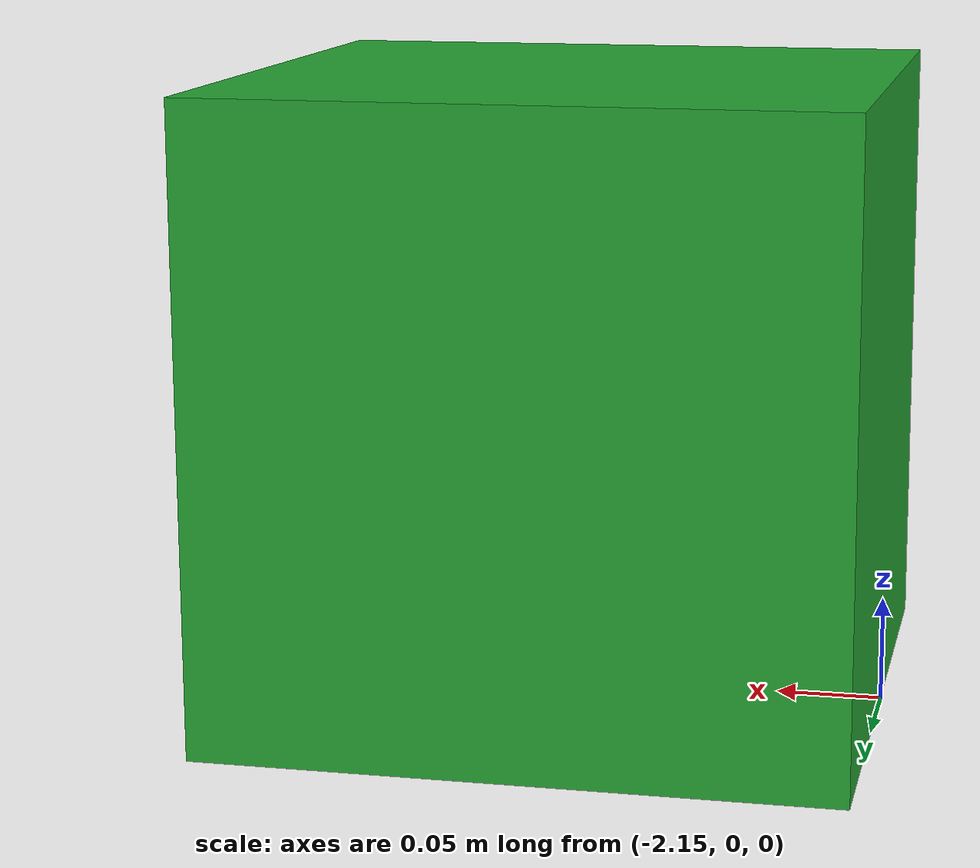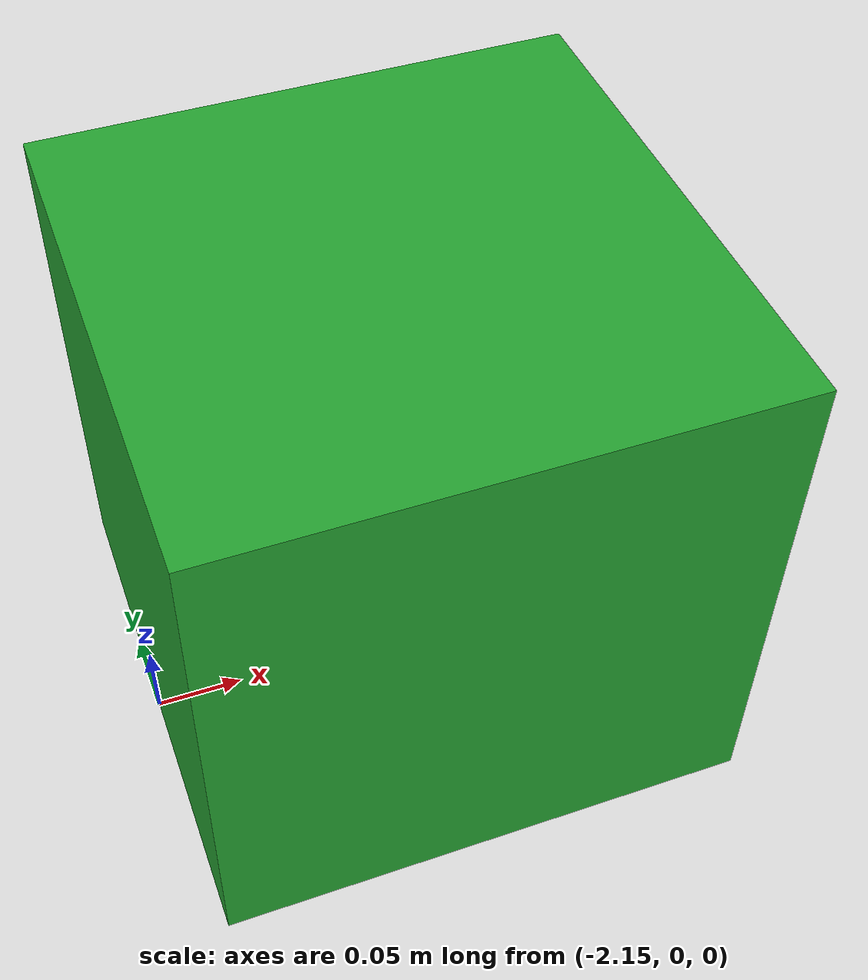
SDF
<?xml version="1.0" ?>
<sdf version="1.6">
  <model name="oscillating_obstacle">
    <static>false</static>
    <pose>-2.0 0.0 0.15 0 0 0</pose>

    <!-- 加载移动插件 -->
    <plugin name="moving_obstacle_plugin" filename="libmoving_obstacle_plugin.so">
      <speed>1.0</speed>      <!-- 角速度 (rad/s) -->
      <amplitude>2.0</amplitude>  <!-- 振幅 (m) -->
      <update_rate>50.0</update_rate> <!-- 更新频率 (Hz) -->
    </plugin>

    <link name="body">
      <inertial>
        <mass>1.0</mass>
        <inertia>
          <ixx>0.01</ixx>
          <ixy>0.0</ixy>
          <ixz>0.0</ixz>
          <iyy>0.01</iyy>
          <iyz>0.0</iyz>
          <izz>0.01</izz>
        </inertia>
      </inertial>

      <collision name="collision">
        <geometry>
          <box>
            <size>0.3 0.3 0.3</size>
          </box>
        </geometry>
      </collision>

      <visual name="visual">
        <geometry>
          <box>
            <size>0.3 0.3 0.3</size>
          </box>
        </geometry>
        <material>
          <script>
            <uri>file://media/materials/scripts/gazebo.material</uri>
            <name>Gazebo/Green</name>
          </script>
        </material>
      </visual>
    </link>
  </model>
</sdf>
